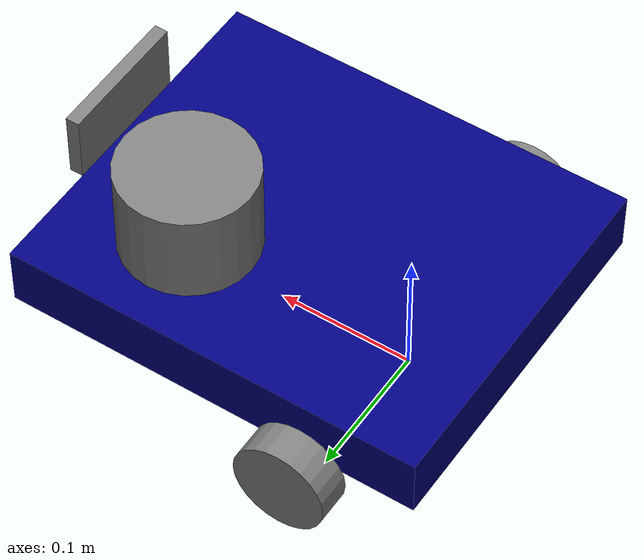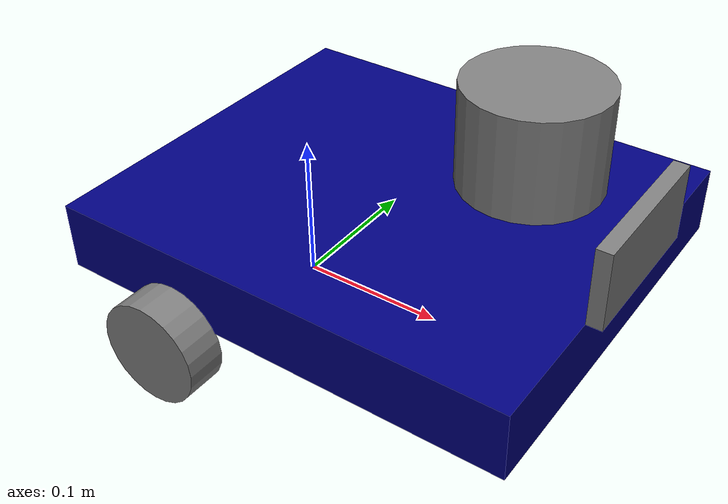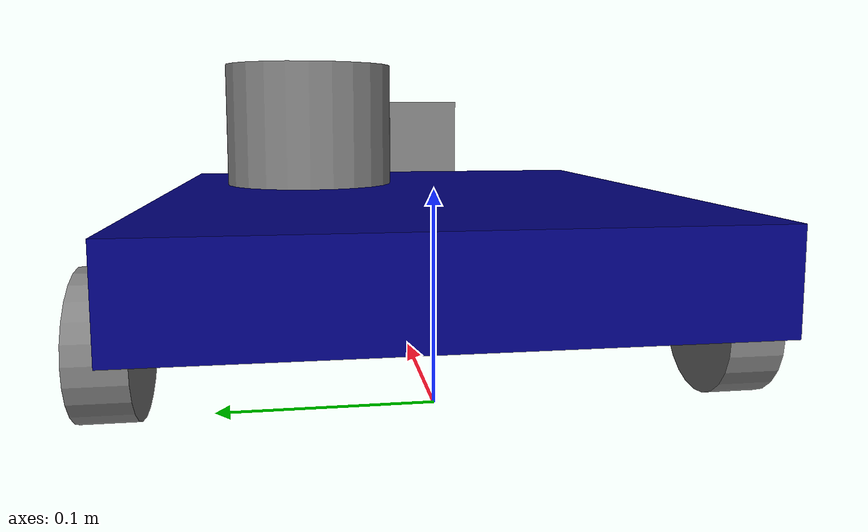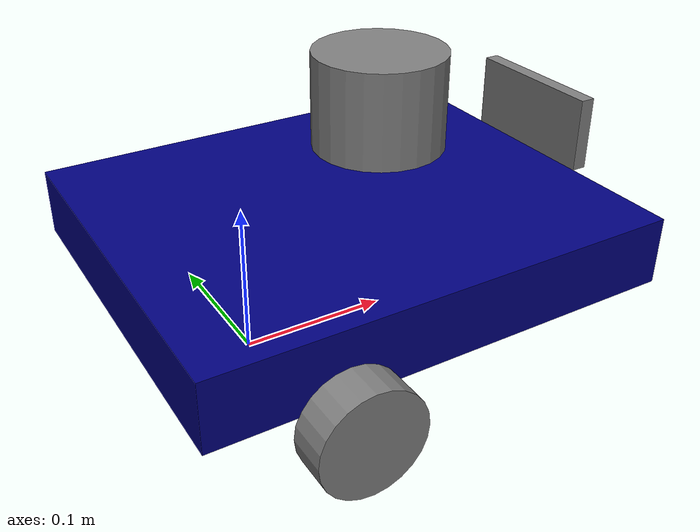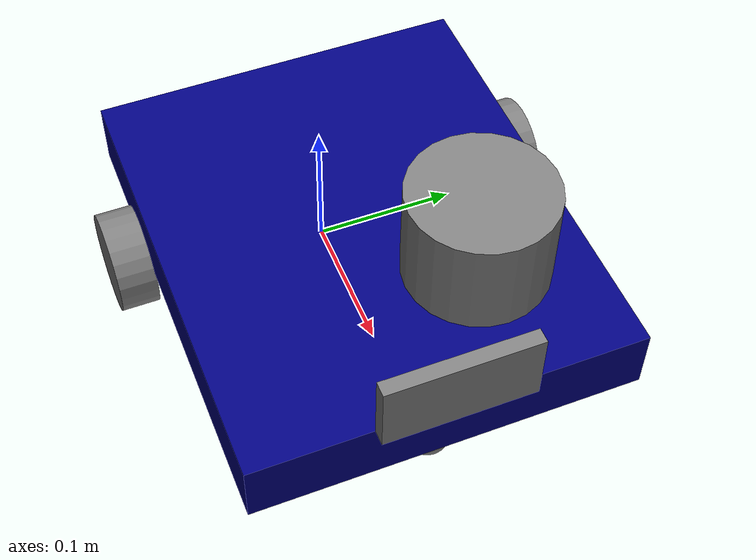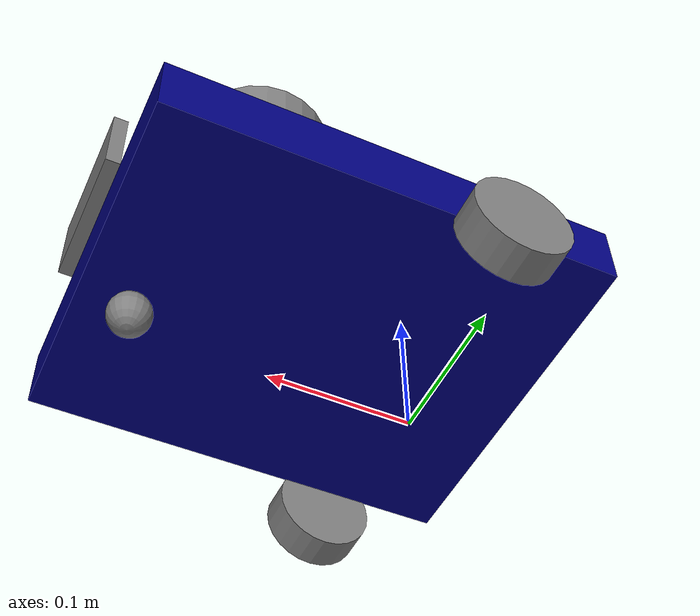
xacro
<?xml version="1.0"?>
<robot name="my_robot" xmlns:xacro="http://www.ros.org/wiki/xacro">

    <xacro:arg name="use_ros2_control" default="false" />
    <xacro:arg name="serial_port" default="/dev/serial/by-id/CHANGE_ME_ARDUINO_MEGA" />
    <xacro:arg name="baud_rate" default="115200" />

    <xacro:include filename="common_properties.xacro" />
    <xacro:include filename="mobile_base.xacro" />
    <xacro:include filename="mobile_base_gazebo.xacro" />
    <xacro:include filename="ros2_control.xacro" />

    <xacro:include filename="camera.xacro" />
    <xacro:include filename="lidar.xacro" />

    <xacro:diffbot_ros2_control
        enabled="$(arg use_ros2_control)"
        serial_port="$(arg serial_port)"
        baud_rate="$(arg baud_rate)" />

</robot>

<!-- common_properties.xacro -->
<robot xmlns:xacro="http://www.ros.org/wiki/xacro">

    <material name="blue">
        <color rgba="0 0 0.5 1" />
    </material>

    <material name="grey">
        <color rgba="0.5 0.5 0.5 1" />
    </material>

    <xacro:macro name="box_inertia" params="m l w h xyz rpy">
        <inertial>
            <origin xyz="${xyz}" rpy="${rpy}" />
            <mass value="${m}" />
            <inertia ixx="${(m/12) * (w*w + h*h)}" ixy="0" ixz="0"
                     iyy="${(m/12) * (l*l + h*h)}" iyz="0"
                     izz="${(m/12) * (l*l + w*w)}" />
        </inertial>
    </xacro:macro>

    <xacro:macro name="cylinder_inertia" params="m r h xyz rpy">
        <inertial>
            <origin xyz="${xyz}" rpy="${rpy}" />
            <mass value="${m}" />
            <inertia ixx="${(m/12) * (3*r*r + h*h)}" ixy="0" ixz="0"
                     iyy="${(m/12) * (3*r*r + h*h)}" iyz="0"
                     izz="${(m/2) * (r*r)}" />
        </inertial>
    </xacro:macro>

    <xacro:macro name="sphere_inertia" params="m r xyz rpy">
        <inertial>
            <origin xyz="${xyz}" rpy="${rpy}" />
            <mass value="${m}" />
            <inertia ixx="${(2/5) * m * r * r}" ixy="0" ixz="0"
                     iyy="${(2/5) * m * r * r}" iyz="0"
                     izz="${(2/5) * m * r * r}" />
        </inertial>
    </xacro:macro>

</robot>

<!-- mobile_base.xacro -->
<robot xmlns:xacro="http://www.ros.org/wiki/xacro">

    <!-- Physical DiffBot dimensions, in metres and kilograms. -->
    <xacro:property name="base_length" value="0.310" />
    <xacro:property name="base_width" value="0.260" />
    <xacro:property name="base_height" value="0.045" />
    <xacro:property name="ground_to_chassis_top" value="0.093" />
    <xacro:property name="wheel_radius" value="0.03425" />
    <xacro:property name="wheel_length" value="0.026" />
    <xacro:property name="wheel_separation" value="0.285" />
    <xacro:property name="base_link_height" value="${wheel_radius}" />
    <xacro:property name="axle_to_chassis_front" value="0.225" />
    <xacro:property name="chassis_center_x"
                    value="${axle_to_chassis_front - base_length / 2.0}" />
    <xacro:property name="chassis_center_z"
                    value="${ground_to_chassis_top - base_height / 2.0 - base_link_height}" />
    <xacro:property name="caster_offset_x" value="0.193" />
    <xacro:property name="caster_radius" value="0.015" />
    <xacro:property name="base_mass" value="0.759" />
    <xacro:property name="wheel_mass" value="0.025" />
    <xacro:property name="caster_mass" value="0.013" />

    <link name="base_footprint" />

    <link name="base_link">
        <visual>
            <geometry>
                <box size="${base_length} ${base_width} ${base_height}" />
            </geometry>
            <origin xyz="${chassis_center_x} 0 ${chassis_center_z}" rpy="0 0 0" />
            <material name="blue" />
        </visual>
        <collision>
            <geometry>
                <box size="${base_length} ${base_width} ${base_height}" />
            </geometry>
            <origin xyz="${chassis_center_x} 0 ${chassis_center_z}" rpy="0 0 0" />
        </collision>
        <xacro:box_inertia m="${base_mass}" l="${base_length}" w="${base_width}"
                           h="${base_height}"
                           xyz="${chassis_center_x} 0 ${chassis_center_z}" rpy="0 0 0" />
    </link>

    <xacro:macro name="wheel_link" params="prefix">
        <link name="${prefix}_wheel_link">
            <visual>
                <geometry>
                    <cylinder radius="${wheel_radius}" length="${wheel_length}" />
                </geometry>
                <origin xyz="0 0 0" rpy="${pi / 2.0} 0 0" />
                <material name="grey" />
            </visual>
            <collision>
                <geometry>
                    <cylinder radius="${wheel_radius}" length="${wheel_length}" />
                </geometry>
                <origin xyz="0 0 0" rpy="${pi / 2.0} 0 0" />
            </collision>
            <xacro:cylinder_inertia m="${wheel_mass}" r="${wheel_radius}" h="${wheel_length}"
                                    xyz="0 0 0" rpy="${pi / 2.0} 0 0" />
        </link>
    </xacro:macro>

    <xacro:wheel_link prefix="right" />
    <xacro:wheel_link prefix="left" />

    <link name="caster_wheel_link">
        <visual>
            <geometry>
                <sphere radius="${caster_radius}" />
            </geometry>
            <origin xyz="0 0 0" rpy="0 0 0" />
            <material name="grey" />
        </visual>
        <collision>
            <geometry>
                <sphere radius="${caster_radius}" />
            </geometry>
            <origin xyz="0 0 0" rpy="0 0 0" />
        </collision>
        <xacro:sphere_inertia m="${caster_mass}" r="${caster_radius}"
                              xyz="0 0 0" rpy="0 0 0" />
    </link>

    <joint name="base_joint" type="fixed">
        <parent link="base_footprint" />
        <child link="base_link" />
        <origin xyz="0 0 ${base_link_height}" rpy="0 0 0"/>
    </joint>

    <joint name="base_right_wheel_joint" type="continuous">
        <parent link="base_link" />
        <child link="right_wheel_link" />
        <origin xyz="0 ${-wheel_separation / 2.0} 0" rpy="0 0 0" />
        <axis xyz="0 1 0" />
    </joint>

    <joint name="base_left_wheel_joint" type="continuous">
        <parent link="base_link" />
        <child link="left_wheel_link" />
        <origin xyz="0 ${wheel_separation / 2.0} 0" rpy="0 0 0" />
        <axis xyz="0 1 0" />
    </joint>

    <joint name="base_caster_wheel_joint" type="fixed">
        <parent link="base_link" />
        <child link="caster_wheel_link" />
        <origin xyz="${caster_offset_x} 0 ${caster_radius - base_link_height}" rpy="0 0 0" />
    </joint>

</robot>

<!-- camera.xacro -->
<robot xmlns:xacro="http://www.ros.org/wiki/xacro">

    <xacro:property name="camera_length" value="0.01" />
    <xacro:property name="camera_width" value="0.1" />
    <xacro:property name="camera_height" value="0.05" />

    <link name="camera_link">
        <visual>
            <geometry>
                <box size="${camera_length} ${camera_width} ${camera_height}" />
            </geometry>
            <material name="grey" />
        </visual>
        <collision>
            <geometry>
                <box size="${camera_length} ${camera_width} ${camera_height}" />
            </geometry>
        </collision>
        <xacro:box_inertia m="0.1" l="${camera_length}" w="${camera_width}" h="${camera_height}"
                           xyz="0 0 0" rpy="0 0 0" />
    </link>

    <joint name="base_camera_joint" type="fixed">
        <parent link="base_link" />
        <child link="camera_link" />
        <origin xyz="${axle_to_chassis_front + camera_length / 2.0} 0
                     ${ground_to_chassis_top + camera_height / 2.0 - base_link_height}"
                rpy="0 0 0" />
    </joint>

    <link name="camera_link_optical">
    </link>

    <joint name="camera_optical_joint" type="fixed">
        <!-- these values have to be these values otherwise the gazebo camera
            image won't be aligned properly with the frame it is supposedly
            originating from -->
        <origin xyz="0 0 0" rpy="${-pi/2} 0 ${-pi/2}"/>
        <parent link="camera_link"/>
        <child link="camera_link_optical"/>
    </joint>

    <gazebo reference="camera_link">
        <material>Gazebo/Red</material>
        <sensor name="camera_sensor" type="camera">
            <pose>0 0 0 0 0 0</pose>
            <visualize>true</visualize>
            <update_rate>10.0</update_rate>
            <plugin name="camera_controller" filename="libgazebo_ros_camera.so">
                <frame_name>camera_link_optical</frame_name>
            </plugin>
        </sensor>
    </gazebo>

</robot>

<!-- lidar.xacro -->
<robot xmlns:xacro="http://www.ros.org/wiki/xacro">

    <xacro:property name="lidar_radius" value="0.0485" />
    <xacro:property name="lidar_height" value="0.070" />

    <link name="lidar_link">
        <visual>
            <geometry>
                <cylinder radius="${lidar_radius}" length="${lidar_height}" />
            </geometry>
            <origin xyz="0 0 0" rpy="0 0 0" />
            <material name="grey" />
        </visual>
        <collision>
            <geometry>
                <cylinder radius="${lidar_radius}" length="${lidar_height}" />
            </geometry>
            <origin xyz="0 0 0" rpy="0 0 0" />
        </collision>
        <xacro:cylinder_inertia m="0.220" r="${lidar_radius}" h="${lidar_height}"
                                xyz="0 0 0" rpy="0 0 0" />
    </link>

    <joint name="base_lidar_joint" type="fixed">
        <parent link="base_link" />
        <child link="lidar_link" />
        <origin xyz="0.135 0.055 ${ground_to_chassis_top + lidar_height / 2.0 - base_link_height}"
                rpy="0 0 0" />
    </joint>

    <gazebo reference="lidar_link">
        <material>Gazebo/Black</material>
        <sensor name="lidar_sensor" type="ray">
            <pose>0 0 0 0 0 0</pose>
            <visualize>true</visualize>
            <update_rate>10</update_rate>
            <ray>
                <scan>
                    <horizontal>
                        <samples>360</samples>
                        <resolution>1</resolution>
                        <min_angle>${-pi}</min_angle>
                        <max_angle>${pi}</max_angle>
                    </horizontal>
                </scan>
                <range>
                    <min>0.12</min>
                    <max>3.5</max>
                    <resolution>0.01</resolution>
                </range>
                <noise>
                    <type>gaussian</type>
                    <mean>0.0</mean>
                    <stddev>0.01</stddev>
                </noise>
            </ray>
            <plugin name="lidar_controller" filename="libgazebo_ros_ray_sensor.so">
                <ros>
                    <remapping>~/out:=scan</remapping>
                </ros>
                <output_type>sensor_msgs/LaserScan</output_type>
                <frame_name>lidar_link</frame_name>
            </plugin>
        </sensor>
    </gazebo>

</robot>
